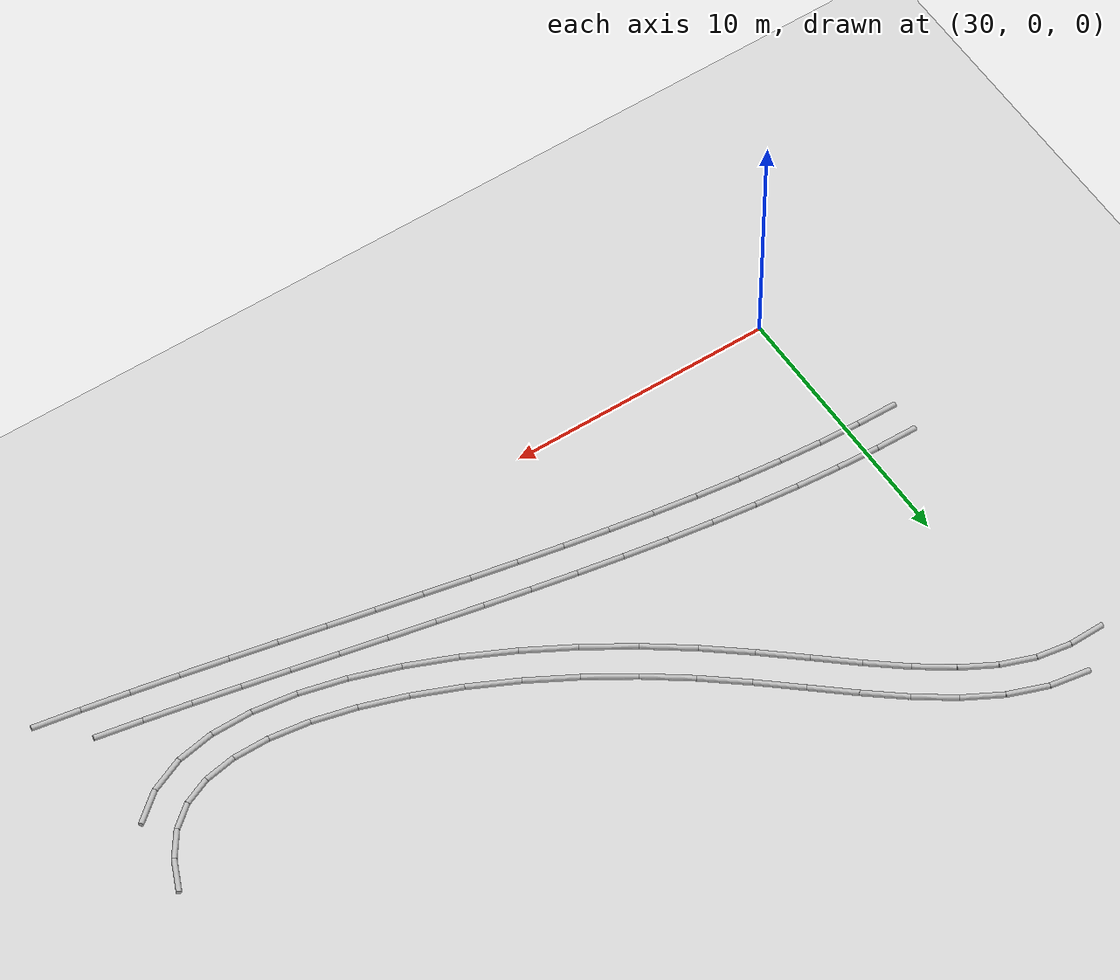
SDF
<sdf version="1.6">
 <world name="default">
  <model name="ground_plane">
   <static>true</static>
   <link name="link">
    <collision name="collision">
     <geometry><plane><normal>0 0 1</normal><size>5000 5000</size></plane></geometry>
     <surface>
      <friction>
       <ode><mu>50</mu></ode>
       <bullet><friction>1</friction><rolling_friction>0.1</rolling_friction></bullet>
      </friction>
     </surface>
    </collision>
    <visual name="visual">
     <geometry><plane><normal>0 0 1</normal><size>5000 5000</size></plane></geometry>
     <material>
      <ambient>0.8 0.8 0.8 1</ambient>
      <diffuse>0.8 0.8 0.8 1</diffuse>
      <specular>0.8 0.8 0.8 1</specular>
     </material>
    </visual>
    <inertial>
     <mass>1</mass>
     <inertia><ixx>1</ixx><ixy>0</ixy><ixz>0</ixz><iyy>1</iyy><iyz>0</iyz><izz>1</izz></inertia>
    </inertial>
   </link>
  </model>
  <model name="line_model">
   <static>true</static>
   <link name="cylinder_(27.9934754372947, 5.2637653848314105)_(29.528332499339804, 5.232846513929506)">
    <pose>28.76090396831725 5.248305949380459 0.05 0 1.5707963267948966 -0.020141738535908203</pose>
    <visual name="visual">
     <geometry><cylinder><radius>0.1</radius><length>1.5351684524792653</length></cylinder></geometry>
    </visual>
    <collision name="collision">
     <geometry><cylinder><radius>0.1</radius><length>1.5351684524792653</length></cylinder></geometry>
    </collision>
   </link>
   <link name="cylinder_(29.528332499339804, 5.232846513929506)_(31.082205224692803, 5.152097378915327)">
    <pose>30.305268862016305 5.192471946422417 0.05 0 1.5707963267948966 -0.051919673633760946</pose>
    <visual name="visual">
     <geometry><cylinder><radius>0.1</radius><length>1.555969430741329</length></cylinder></geometry>
    </visual>
    <collision name="collision">
     <geometry><cylinder><radius>0.1</radius><length>1.555969430741329</length></cylinder></geometry>
    </collision>
   </link>
   <link name="cylinder_(31.082205224692803, 5.152097378915327)_(32.654111068658146, 5.025552953069772)">
    <pose>31.868158146675476 5.088825165992549 0.05 0 1.5707963267948966 -0.08033058213804231</pose>
    <visual name="visual">
     <geometry><cylinder><radius>0.1</radius><length>1.5769912726470552</length></cylinder></geometry>
    </visual>
    <collision name="collision">
     <geometry><cylinder><radius>0.1</radius><length>1.5769912726470552</length></cylinder></geometry>
    </collision>
   </link>
   <link name="cylinder_(32.654111068658146, 5.025552953069772)_(34.24305451079734, 4.857277501087925)">
    <pose>33.448582789727745 4.941415227078848 0.05 0 1.5707963267948966 -0.10551070663037972</pose>
    <visual name="visual">
     <geometry><cylinder><radius>0.1</radius><length>1.5978291179149458</length></cylinder></geometry>
    </visual>
    <collision name="collision">
     <geometry><cylinder><radius>0.1</radius><length>1.5978291179149458</length></cylinder></geometry>
    </collision>
   </link>
   <link name="cylinder_(34.24305451079734, 4.857277501087925)_(35.84803471329416, 4.6513620729837895)">
    <pose>35.04554461204575 4.754319787035858 0.05 0 1.5707963267948966 -0.12760072980671502</pose>
    <visual name="visual">
     <geometry><cylinder><radius>0.1</radius><length>1.618135536331255</length></cylinder></geometry>
    </visual>
    <collision name="collision">
     <geometry><cylinder><radius>0.1</radius><length>1.618135536331255</length></cylinder></geometry>
    </collision>
   </link>
   <link name="cylinder_(35.84803471329416, 4.6513620729837895)_(37.468051202185926, 4.411921430507268)">
    <pose>36.658042957740044 4.5316417517455285 0.05 0 1.5707963267948966 -0.14673899931854084</pose>
    <visual name="visual">
     <geometry><cylinder><radius>0.1</radius><length>1.637615719743423</length></cylinder></geometry>
    </visual>
    <collision name="collision">
     <geometry><cylinder><radius>0.1</radius><length>1.637615719743423</length></cylinder></geometry>
    </collision>
   </link>
   <link name="cylinder_(37.468051202185926, 4.411921430507268)_(39.10210790791441, 4.143090862295393)">
    <pose>38.28507955505017 4.277506146401331 0.05 0 1.5707963267948966 -0.16305665831483268</pose>
    <visual name="visual">
     <geometry><cylinder><radius>0.1</radius><length>1.6560227027252197</length></cylinder></geometry>
    </visual>
    <collision name="collision">
     <geometry><cylinder><radius>0.1</radius><length>1.6560227027252197</length></cylinder></geometry>
    </collision>
   </link>
   <link name="cylinder_(39.10210790791441, 4.143090862295393)_(40.749215912476004, 3.849023171927874)">
    <pose>39.9256619101952 3.9960570171116334 0.05 0 1.5707963267948966 -0.17667429598291565</pose>
    <visual name="visual">
     <geometry><cylinder><radius>0.1</radius><length>1.673152887577512</length></cylinder></geometry>
    </visual>
    <collision name="collision">
     <geometry><cylinder><radius>0.1</radius><length>1.673152887577512</length></cylinder></geometry>
    </collision>
   </link>
   <link name="cylinder_(40.749215912476004, 3.849023171927874)_(42.40839521754821, 3.5338859976778467)">
    <pose>41.578805565012104 3.6914545848028606 0.05 0 1.5707963267948966 -0.18769976485526352</pose>
    <visual name="visual">
     <geometry><cylinder><radius>0.1</radius><length>1.6888420307933438</length></cylinder></geometry>
    </visual>
    <collision name="collision">
     <geometry><cylinder><radius>0.1</radius><length>1.6888420307933438</length></cylinder></geometry>
    </collision>
   </link>
   <link name="cylinder_(42.40839521754821, 3.5338859976778467)_(44.0786757963008, 3.2018595382521617)">
    <pose>43.2435355069245 3.3678727679650042 0.05 0 1.5707963267948966 -0.19622686524881242</pose>
    <visual name="visual">
     <geometry><cylinder><radius>0.1</radius><length>1.7029617674853537</length></cylinder></geometry>
    </visual>
    <collision name="collision">
     <geometry><cylinder><radius>0.1</radius><length>1.7029617674853537</length></cylinder></geometry>
    </collision>
   </link>
   <link name="cylinder_(44.0786757963008, 3.2018595382521617)_(45.759098135993014, 2.857134706126849)">
    <pose>44.91888696614691 3.0294971221895053 0.05 0 1.5707963267948966 -0.20233465634317807</pose>
    <visual name="visual">
     <geometry><cylinder><radius>0.1</radius><length>1.715416698537262</length></cylinder></geometry>
    </visual>
    <collision name="collision">
     <geometry><cylinder><radius>0.1</radius><length>1.715416698537262</length></cylinder></geometry>
    </collision>
   </link>
   <link name="cylinder_(45.759098135993014, 2.857134706126849)_(47.44871342654577, 2.503911700198528)">
    <pose>46.60390578126939 2.6805232031626884 0.05 0 1.5707963267948966 -0.20608720965147564</pose>
    <visual name="visual">
     <geometry><cylinder><radius>0.1</radius><length>1.7261420341289189</length></cylinder></geometry>
    </visual>
    <collision name="collision">
     <geometry><cylinder><radius>0.1</radius><length>1.7261420341289189</length></cylinder></geometry>
    </collision>
   </link>
   <link name="cylinder_(47.44871342654577, 2.503911700198528)_(49.146583505119345, 2.14639897485304)">
    <pose>48.29764846583256 2.325155337525784 0.05 0 1.5707963267948966 -0.2075336702733194</pose>
    <visual name="visual">
     <geometry><cylinder><radius>0.1</radius><length>1.73510177006981</length></cylinder></geometry>
    </visual>
    <collision name="collision">
     <geometry><cylinder><radius>0.1</radius><length>1.73510177006981</length></cylinder></geometry>
    </collision>
   </link>
   <link name="cylinder_(49.146583505119345, 2.14639897485304)_(50.851780628765574, 1.7888125774310855)">
    <pose>49.99918206694246 1.967605776142063 0.05 0 1.5707963267948966 -0.2067085334373408</pose>
    <visual name="visual">
     <geometry><cylinder><radius>0.1</radius><length>1.7422873649638242</length></cylinder></geometry>
    </visual>
    <collision name="collision">
     <geometry><cylinder><radius>0.1</radius><length>1.7422873649638242</length></cylinder></geometry>
    </collision>
   </link>
   <link name="cylinder_(50.851780628765574, 1.7888125774310855)_(52.56338711558502, 1.4353758262490761)">
    <pose>51.7075838721753 1.6120942018400808 0.05 0 1.5707963267948966 -0.20363207903535804</pose>
    <visual name="visual">
     <geometry><cylinder><radius>0.1</radius><length>1.7477168829099605</length></cylinder></geometry>
    </visual>
    <collision name="collision">
     <geometry><cylinder><radius>0.1</radius><length>1.7477168829099605</length></cylinder></geometry>
    </collision>
   </link>
   <link name="cylinder_(52.56338711558502, 1.4353758262490761)_(54.280494868097854, 1.090319303800935)">
    <pose>53.42194099184144 1.2628475650250055 0.05 0 1.5707963267948966 -0.1983109363935158</pose>
    <visual name="visual">
     <geometry><cylinder><radius>0.1</radius><length>1.7514345655558103</length></cylinder></geometry>
    </visual>
    <collision name="collision">
     <geometry><cylinder><radius>0.1</radius><length>1.7514345655558103</length></cylinder></geometry>
    </collision>
   </link>
   <link name="cylinder_(54.280494868097854, 1.090319303800935)_(56.0022047692579, 0.7578811423034493)">
    <pose>55.14134981867788 0.9241002230521921 0.05 0 1.5707963267948966 -0.1907387768709768</pose>
    <visual name="visual">
     <geometry><cylinder><radius>0.1</radius><length>1.7535107969363537</length></cylinder></geometry>
    </visual>
    <collision name="collision">
     <geometry><cylinder><radius>0.1</radius><length>1.7535107969363537</length></cylinder></geometry>
    </collision>
   </link>
   <link name="cylinder_(56.0022047692579, 0.7578811423034493)_(57.727625920437426, 0.442307579578182)">
    <pose>56.86491534484766 0.6000943609408156 0.05 0 1.5707963267948966 -0.1808971543747414</pose>
    <visual name="visual">
     <geometry><cylinder><radius>0.1</radius><length>1.7540424232123906</length></cylinder></geometry>
    </visual>
    <collision name="collision">
     <geometry><cylinder><radius>0.1</radius><length>1.7540424232123906</length></cylinder></geometry>
    </collision>
   </link>
   <link name="cylinder_(57.727625920437426, 0.442307579578182)_(59.4558746709025, 0.14785376078527576)">
    <pose>58.59175029566997 0.2950806701817289 0.05 0 1.5707963267948966 -0.16875653459969686</pose>
    <visual name="visual">
     <geometry><cylinder><radius>0.1</radius><length>1.7531533860121387</length></cylinder></geometry>
    </visual>
    <collision name="collision">
     <geometry><cylinder><radius>0.1</radius><length>1.7531533860121387</length></cylinder></geometry>
    </collision>
   </link>
   <link name="cylinder_(58.70257410059047, 8.26828628424899)_(58.17057464492759, 7.100785915531385)">
    <pose>58.436574372759026 7.684536099890188 0.05 0 1.5707963267948966 -1.9983586474163566</pose>
    <visual name="visual">
     <geometry><cylinder><radius>0.1</radius><length>1.2829966998325997</length></cylinder></geometry>
    </visual>
    <collision name="collision">
     <geometry><cylinder><radius>0.1</radius><length>1.2829966998325997</length></cylinder></geometry>
    </collision>
   </link>
   <link name="cylinder_(58.17057464492759, 7.100785915531385)_(57.50331608716293, 6.182983454078983)">
    <pose>57.836945366045256 6.641884684805184 0.05 0 1.5707963267948966 -2.1994257365991934</pose>
    <visual name="visual">
     <geometry><cylinder><radius>0.1</radius><length>1.134722583347253</length></cylinder></geometry>
    </visual>
    <collision name="collision">
     <geometry><cylinder><radius>0.1</radius><length>1.134722583347253</length></cylinder></geometry>
    </collision>
   </link>
   <link name="cylinder_(57.50331608716293, 6.182983454078983)_(56.69185200317473, 5.514856528403582)">
    <pose>57.09758404516883 5.848919991241283 0.05 0 1.5707963267948966 -2.4527693268920774</pose>
    <visual name="visual">
     <geometry><cylinder><radius>0.1</radius><length>1.0511267993992301</length></cylinder></geometry>
    </visual>
    <collision name="collision">
     <geometry><cylinder><radius>0.1</radius><length>1.0511267993992301</length></cylinder></geometry>
    </collision>
   </link>
   <link name="cylinder_(56.69185200317473, 5.514856528403582)_(55.69785671107928, 5.078561471795666)">
    <pose>56.19485435712701 5.296709000099624 0.05 0 1.5707963267948966 -2.7279819871769684</pose>
    <visual name="visual">
     <geometry><cylinder><radius>0.1</radius><length>1.0855321354655605</length></cylinder></geometry>
    </visual>
    <collision name="collision">
     <geometry><cylinder><radius>0.1</radius><length>1.0855321354655605</length></cylinder></geometry>
    </collision>
   </link>
   <link name="cylinder_(55.69785671107928, 5.078561471795666)_(54.50592746374859, 4.8599177005993655)">
    <pose>55.10189208741394 4.969239586197515 0.05 0 1.5707963267948966 -2.960172710528369</pose>
    <visual name="visual">
     <geometry><cylinder><radius>0.1</radius><length>1.2118169949811928</length></cylinder></geometry>
    </visual>
    <collision name="collision">
     <geometry><cylinder><radius>0.1</radius><length>1.2118169949811928</length></cylinder></geometry>
    </collision>
   </link>
   <link name="cylinder_(54.50592746374859, 4.8599177005993655)_(53.13992916734067, 4.856273944405601)">
    <pose>53.82292831554463 4.858095822502483 0.05 0 1.5707963267948966 -3.138925192319056</pose>
    <visual name="visual">
     <geometry><cylinder><radius>0.1</radius><length>1.3660031562000683</length></cylinder></geometry>
    </visual>
    <collision name="collision">
     <geometry><cylinder><radius>0.1</radius><length>1.3660031562000683</length></cylinder></geometry>
    </collision>
   </link>
   <link name="cylinder_(53.13992916734067, 4.856273944405601)_(51.63396336661217, 5.05892124522998)">
    <pose>52.38694626697642 4.95759759481779 0.05 0 1.5707963267948966 3.0078331125429276</pose>
    <visual name="visual">
     <geometry><cylinder><radius>0.1</radius><length>1.5195390490195468</length></cylinder></geometry>
    </visual>
    <collision name="collision">
     <geometry><cylinder><radius>0.1</radius><length>1.5195390490195468</length></cylinder></geometry>
    </collision>
   </link>
   <link name="cylinder_(51.63396336661217, 5.05892124522998)_(50.023648734237184, 5.453043497631224)">
    <pose>50.828806050424674 5.255982371430602 0.05 0 1.5707963267948966 2.9015625584707525</pose>
    <visual name="visual">
     <geometry><cylinder><radius>0.1</radius><length>1.6578436491656319</length></cylinder></geometry>
    </visual>
    <collision name="collision">
     <geometry><cylinder><radius>0.1</radius><length>1.6578436491656319</length></cylinder></geometry>
    </collision>
   </link>
   <link name="cylinder_(50.023648734237184, 5.453043497631224)_(48.34341062093662, 6.020392834182298)">
    <pose>49.183529677586904 5.736718165906761 0.05 0 1.5707963267948966 2.8159530944212254</pose>
    <visual name="visual">
     <geometry><cylinder><radius>0.1</radius><length>1.7734388591301287</length></cylinder></geometry>
    </visual>
    <collision name="collision">
     <geometry><cylinder><radius>0.1</radius><length>1.7734388591301287</length></cylinder></geometry>
    </collision>
   </link>
   <link name="cylinder_(48.34341062093662, 6.020392834182298)_(46.626273446217084, 6.741074128621283)">
    <pose>47.484842033576854 6.380733481401791 0.05 0 1.5707963267948966 2.744220287857938</pose>
    <visual name="visual">
     <geometry><cylinder><radius>0.1</radius><length>1.8622410168820933</length></cylinder></geometry>
    </visual>
    <collision name="collision">
     <geometry><cylinder><radius>0.1</radius><length>1.8622410168820933</length></cylinder></geometry>
    </collision>
   </link>
   <link name="cylinder_(46.626273446217084, 6.741074128621283)_(44.90422032114967, 7.594413650578128)">
    <pose>45.765246883683375 7.167743889599706 0.05 0 1.5707963267948966 2.681522522091067</pose>
    <visual name="visual">
     <geometry><cylinder><radius>0.1</radius><length>1.9218884736862267</length></cylinder></geometry>
    </visual>
    <collision name="collision">
     <geometry><cylinder><radius>0.1</radius><length>1.9218884736862267</length></cylinder></geometry>
    </collision>
   </link>
   <link name="cylinder_(44.90422032114967, 7.594413650578128)_(43.208557548481124, 8.559329355519212)">
    <pose>44.0563889348154 8.07687150304867 0.05 0 1.5707963267948966 2.6242419861679354</pose>
    <visual name="visual">
     <geometry><cylinder><radius>0.1</radius><length>1.9509829718006098</length></cylinder></geometry>
    </visual>
    <collision name="collision">
     <geometry><cylinder><radius>0.1</radius><length>1.9509829718006098</length></cylinder></geometry>
    </collision>
   </link>
   <link name="cylinder_(43.208557548481124, 8.559329355519212)_(41.57018761349734, 9.614455479859743)">
    <pose>42.38937258098923 9.086892417689477 0.05 0 1.5707963267948966 2.5694400760486515</pose>
    <visual name="visual">
     <geometry><cylinder><radius>0.1</radius><length>1.9487296328954002</length></cylinder></geometry>
    </visual>
    <collision name="collision">
     <geometry><cylinder><radius>0.1</radius><length>1.9487296328954002</length></cylinder></geometry>
    </collision>
   </link>
   <link name="cylinder_(41.57018761349734, 9.614455479859743)_(40.019381489834764, 10.738331463423512)">
    <pose>40.794784551666055 10.176393471641628 0.05 0 1.5707963267948966 2.514478261172005</pose>
    <visual name="visual">
     <geometry><cylinder><radius>0.1</radius><length>1.9152276260593077</length></cylinder></geometry>
    </visual>
    <collision name="collision">
     <geometry><cylinder><radius>0.1</radius><length>1.9152276260593077</length></cylinder></geometry>
    </collision>
   </link>
   <link name="cylinder_(40.019381489834764, 10.738331463423512)_(38.56221468891156, 11.908993749539263)">
    <pose>39.29079808937316 11.323662606481388 0.05 0 1.5707963267948966 2.4647926206903668</pose>
    <visual name="visual">
     <geometry><cylinder><radius>0.1</radius><length>1.8691669999886373</length></cylinder></geometry>
    </visual>
    <collision name="collision">
     <geometry><cylinder><radius>0.1</radius><length>1.8691669999886373</length></cylinder></geometry>
    </collision>
   </link>
   <link name="cylinder_(38.56221468891156, 11.908993749539263)_(37.176200601954754, 13.087338510544694)">
    <pose>37.86920764543316 12.498166130041978 0.05 0 1.5707963267948966 2.437001091275924</pose>
    <visual name="visual">
     <geometry><cylinder><radius>0.1</radius><length>1.8192117592604915</length></cylinder></geometry>
    </visual>
    <collision name="collision">
     <geometry><cylinder><radius>0.1</radius><length>1.8192117592604915</length></cylinder></geometry>
    </collision>
   </link>
   <link name="cylinder_(37.176200601954754, 13.087338510544694)_(35.8375525327696, 14.229338309377795)">
    <pose>36.50687656736218 13.658338409961244 0.05 0 1.5707963267948966 2.435302006180048</pose>
    <visual name="visual">
     <geometry><cylinder><radius>0.1</radius><length>1.7595858017351658</length></cylinder></geometry>
    </visual>
    <collision name="collision">
     <geometry><cylinder><radius>0.1</radius><length>1.7595858017351658</length></cylinder></geometry>
    </collision>
   </link>
   <link name="cylinder_(35.8375525327696, 14.229338309377795)_(34.52081895490387, 15.290516835370616)">
    <pose>35.17918574383674 14.759927572374206 0.05 0 1.5707963267948966 2.4632539300511183</pose>
    <visual name="visual">
     <geometry><cylinder><radius>0.1</radius><length>1.6911200960036434</length></cylinder></geometry>
    </visual>
    <collision name="collision">
     <geometry><cylinder><radius>0.1</radius><length>1.6911200960036434</length></cylinder></geometry>
    </collision>
   </link>
   <link name="cylinder_(34.52081895490387, 15.290516835370616)_(33.19829575799273, 16.225268993501267)">
    <pose>33.859557356448306 15.757892914435942 0.05 0 1.5707963267948966 2.5263211446560225</pose>
    <visual name="visual">
     <geometry><cylinder><radius>0.1</radius><length>1.6195151136985346</length></cylinder></geometry>
    </visual>
    <collision name="collision">
     <geometry><cylinder><radius>0.1</radius><length>1.6195151136985346</length></cylinder></geometry>
    </collision>
   </link>
   <link name="cylinder_(33.19829575799273, 16.225268993501267)_(31.840201454721644, 16.984878418232007)">
    <pose>32.51924860635719 16.605073705866637 0.05 0 1.5707963267948966 2.6316220763667695</pose>
    <visual name="visual">
     <geometry><cylinder><radius>0.1</radius><length>1.556093382389742</length></cylinder></geometry>
    </visual>
    <collision name="collision">
     <geometry><cylinder><radius>0.1</radius><length>1.556093382389742</length></cylinder></geometry>
    </collision>
   </link>
   <link name="cylinder_(31.840201454721644, 16.984878418232007)_(30.417866588545404, 17.514300594670665)">
    <pose>31.129034021633522 17.249589506451336 0.05 0 1.5707963267948966 2.785261040721242</pose>
    <visual name="visual">
     <geometry><cylinder><radius>0.1</radius><length>1.517670686428919</length></cylinder></geometry>
    </visual>
    <collision name="collision">
     <geometry><cylinder><radius>0.1</radius><length>1.517670686428919</length></cylinder></geometry>
    </collision>
   </link>
   <link name="cylinder_(30.417866588545404, 17.514300594670665)_(28.926657469427106, 17.758682647520832)">
    <pose>29.672262028986253 17.63649162109575 0.05 0 1.5707963267948966 2.9791547818362183</pose>
    <visual name="visual">
     <geometry><cylinder><radius>0.1</radius><length>1.5111013284015187</length></cylinder></geometry>
    </visual>
    <collision name="collision">
     <geometry><cylinder><radius>0.1</radius><length>1.5111013284015187</length></cylinder></geometry>
    </collision>
   </link>
   <link name="cylinder_(27.99714726541719, 6.463759767184193)_(29.57220316422609, 6.432044314445515)">
    <pose>28.78467521482164 6.447902040814855 0.05 0 1.5707963267948966 -0.020133359925528886</pose>
    <visual name="visual">
     <geometry><cylinder><radius>0.1</radius><length>1.5753751789066393</length></cylinder></geometry>
    </visual>
    <collision name="collision">
     <geometry><cylinder><radius>0.1</radius><length>1.5753751789066393</length></cylinder></geometry>
    </collision>
   </link>
   <link name="cylinder_(29.57220316422609, 6.432044314445515)_(31.162118148247213, 6.349433557542276)">
    <pose>30.36716065623665 6.3907389359938955 0.05 0 1.5707963267948966 -0.0519125455215297</pose>
    <visual name="visual">
     <geometry><cylinder><radius>0.1</radius><length>1.5920597330411377</length></cylinder></geometry>
    </visual>
    <collision name="collision">
     <geometry><cylinder><radius>0.1</radius><length>1.5920597330411377</length></cylinder></geometry>
    </collision>
   </link>
   <link name="cylinder_(31.162118148247213, 6.349433557542276)_(32.76605189472212, 6.220320399671879)">
    <pose>31.964085021484664 6.284876978607077 0.05 0 1.5707963267948966 -0.08032461278766254</pose>
    <visual name="visual">
     <geometry><cylinder><radius>0.1</radius><length>1.6091220185605224</length></cylinder></geometry>
    </visual>
    <collision name="collision">
     <geometry><cylinder><radius>0.1</radius><length>1.6091220185605224</length></cylinder></geometry>
    </collision>
   </link>
   <link name="cylinder_(32.76605189472212, 6.220320399671879)_(34.38317705663536, 6.049068452617544)">
    <pose>33.57461447567874 6.134694426144711 0.05 0 1.5707963267948966 -0.10550577682255322</pose>
    <visual name="visual">
     <geometry><cylinder><radius>0.1</radius><length>1.6261675862784974</length></cylinder></geometry>
    </visual>
    <collision name="collision">
     <geometry><cylinder><radius>0.1</radius><length>1.6261675862784974</length></cylinder></geometry>
    </collision>
   </link>
   <link name="cylinder_(34.38317705663536, 6.049068452617544)_(36.01267160434911, 5.840014542843572)">
    <pose>35.197924330492235 5.944541497730558 0.05 0 1.5707963267948966 -0.1275967119278345</pose>
    <visual name="visual">
     <geometry><cylinder><radius>0.1</radius><length>1.6428499682626574</length></cylinder></geometry>
    </visual>
    <collision name="collision">
     <geometry><cylinder><radius>0.1</radius><length>1.6428499682626574</length></cylinder></geometry>
    </collision>
   </link>
   <link name="cylinder_(36.01267160434911, 5.840014542843572)_(37.653713144372105, 5.597471785078366)">
    <pose>36.83319237436061 5.718743163960969 0.05 0 1.5707963267948966 -0.14673576959441892</pose>
    <visual name="visual">
     <geometry><cylinder><radius>0.1</radius><length>1.658868387011278</length></cylinder></geometry>
    </visual>
    <collision name="collision">
     <geometry><cylinder><radius>0.1</radius><length>1.658868387011278</length></cylinder></geometry>
    </collision>
   </link>
   <link name="cylinder_(37.653713144372105, 5.597471785078366)_(39.305474878808546, 5.3257327671631955)">
    <pose>38.47959401159032 5.4616022761207805 0.05 0 1.5707963267948966 -0.16305410388848499</pose>
    <visual name="visual">
     <geometry><cylinder><radius>0.1</radius><length>1.6739650298635218</length></cylinder></geometry>
    </visual>
    <collision name="collision">
     <geometry><cylinder><radius>0.1</radius><length>1.6739650298635218</length></cylinder></geometry>
    </collision>
   </link>
   <link name="cylinder_(39.305474878808546, 5.3257327671631955)_(40.96712285820811, 5.0290725619966565)">
    <pose>40.13629886850833 5.177402664579926 0.05 0 1.5707963267948966 -0.17667231841887104</pose>
    <visual name="visual">
     <geometry><cylinder><radius>0.1</radius><length>1.6879221797144845</length></cylinder></geometry>
    </visual>
    <collision name="collision">
     <geometry><cylinder><radius>0.1</radius><length>1.6879221797144845</length></cylinder></geometry>
    </collision>
   </link>
   <link name="cylinder_(40.96712285820811, 5.0290725619966565)_(42.637814213439256, 4.711751407783916)">
    <pose>41.80246853582368 4.8704119848902865 0.05 0 1.5707963267948966 -0.1876982813471245</pose>
    <visual name="visual">
     <geometry><cylinder><radius>0.1</radius><length>1.700559413650402</length></cylinder></geometry>
    </visual>
    <collision name="collision">
     <geometry><cylinder><radius>0.1</radius><length>1.700559413650402</length></cylinder></geometry>
    </collision>
   </link>
   <link name="cylinder_(42.637814213439256, 4.711751407783916)_(44.31669610387824, 4.378016982296429)">
    <pose>43.47725515865875 4.544884195040172 0.05 0 1.5707963267948966 -0.19622580846998897</pose>
    <visual name="visual">
     <geometry><cylinder><radius>0.1</radius><length>1.7117310153173746</length></cylinder></geometry>
    </visual>
    <collision name="collision">
     <geometry><cylinder><radius>0.1</radius><length>1.7117310153173746</length></cylinder></geometry>
    </collision>
   </link>
   <link name="cylinder_(44.31669610387824, 4.378016982296429)_(46.002905174811865, 4.0321062495364695)">
    <pose>45.15980063934505 4.205061615916449 0.05 0 1.5707963267948966 -0.20233397358605656</pose>
    <visual name="visual">
     <geometry><cylinder><radius>0.1</radius><length>1.7213236958623903</length></cylinder></geometry>
    </visual>
    <collision name="collision">
     <geometry><cylinder><radius>0.1</radius><length>1.7213236958623903</length></cylinder></geometry>
    </collision>
   </link>
   <link name="cylinder_(46.002905174811865, 4.0321062495364695)_(47.69556736886517, 3.678246887085718)">
    <pose>46.84923627183852 3.8551765683110935 0.05 0 1.5707963267948966 -0.20608686167028487</pose>
    <visual name="visual">
     <geometry><cylinder><radius>0.1</radius><length>1.7292546809453493</length></cylinder></geometry>
    </visual>
    <collision name="collision">
     <geometry><cylinder><radius>0.1</radius><length>1.7292546809453493</length></cylinder></geometry>
    </collision>
   </link>
   <link name="cylinder_(47.69556736886517, 3.678246887085718)_(49.39379798142391, 3.3206583170366395)">
    <pose>48.54468267514454 3.4994526020611785 0.05 0 1.5707963267948966 -0.20753363007868864</pose>
    <visual name="visual">
     <geometry><cylinder><radius>0.1</radius><length>1.735470195324994</length></cylinder></geometry>
    </visual>
    <collision name="collision">
     <geometry><cylinder><radius>0.1</radius><length>1.735470195324994</length></cylinder></geometry>
    </collision>
   </link>
   <link name="cylinder_(49.39379798142391, 3.3206583170366395)_(51.09670188798232, 2.9635523685268335)">
    <pose>50.24524993470311 3.1421053427817363 0.05 0 1.5707963267948966 -0.2067087851734931</pose>
    <visual name="visual">
     <geometry><cylinder><radius>0.1</radius><length>1.7399443592922699</length></cylinder></geometry>
    </visual>
    <collision name="collision">
     <geometry><cylinder><radius>0.1</radius><length>1.7399443592922699</length></cylinder></geometry>
    </collision>
   </link>
   <link name="cylinder_(51.09670188798232, 2.9635523685268335)_(52.80337390298574, 2.6111335997182037)">
    <pose>51.95003789548403 2.7873429841225184 0.05 0 1.5707963267948966 -0.20363261699020124</pose>
    <visual name="visual">
     <geometry><cylinder><radius>0.1</radius><length>1.742678500299015</length></cylinder></geometry>
    </visual>
    <collision name="collision">
     <geometry><cylinder><radius>0.1</radius><length>1.742678500299015</length></cylinder></geometry>
    </collision>
   </link>
   <link name="cylinder_(52.80337390298574, 2.6111335997182037)_(54.51289925646014, 2.2675993045951186)">
    <pose>53.658136579722935 2.439366452156661 0.05 0 1.5707963267948966 -0.1983117641346083</pose>
    <visual name="visual">
     <geometry><cylinder><radius>0.1</radius><length>1.7437008763252597</length></cylinder></geometry>
    </visual>
    <collision name="collision">
     <geometry><cylinder><radius>0.1</radius><length>1.7437008763252597</length></cylinder></geometry>
    </collision>
   </link>
   <link name="cylinder_(54.51289925646014, 2.2675993045951186)_(56.224354197997556, 1.9371392274191066)">
    <pose>55.36862672722884 2.1023692660071127 0.05 0 1.5707963267948966 -0.19073990645607836</pose>
    <visual name="visual">
     <geometry><cylinder><radius>0.1</radius><length>1.743066802942453</length></cylinder></geometry>
    </visual>
    <collision name="collision">
     <geometry><cylinder><radius>0.1</radius><length>1.743066802942453</length></cylinder></geometry>
    </collision>
   </link>
   <link name="cylinder_(56.224354197997556, 1.9371392274191066)_(57.93680675877189, 1.6239350068469)">
    <pose>57.08058047838472 1.7805371171330033 0.05 0 1.5707963267948966 -0.18089860554656162</pose>
    <visual name="visual">
     <geometry><cylinder><radius>0.1</radius><length>1.74085917198572</length></cylinder></geometry>
    </visual>
    <collision name="collision">
     <geometry><cylinder><radius>0.1</radius><length>1.74085917198572</length></cylinder></geometry>
    </collision>
   </link>
   <link name="cylinder_(58.38195996262169, 5.365679997510485)_(57.31862546477745, 4.491550597691488)">
    <pose>57.850292713699574 4.928615297600986 0.05 0 1.5707963267948966 -2.4535418792512367</pose>
    <visual name="visual">
     <geometry><cylinder><radius>0.1</radius><length>1.3765109741420858</length></cylinder></geometry>
    </visual>
    <collision name="collision">
     <geometry><cylinder><radius>0.1</radius><length>1.3765109741420858</length></cylinder></geometry>
    </collision>
   </link>
   <link name="cylinder_(57.31862546477745, 4.491550597691488)_(56.04130613629057, 3.9287604053837244)">
    <pose>56.679965800534006 4.210155501537606 0.05 0 1.5707963267948966 -2.726581048216616</pose>
    <visual name="visual">
     <geometry><cylinder><radius>0.1</radius><length>1.3958071025338605</length></cylinder></geometry>
    </visual>
    <collision name="collision">
     <geometry><cylinder><radius>0.1</radius><length>1.3958071025338605</length></cylinder></geometry>
    </collision>
   </link>
   <link name="cylinder_(56.04130613629057, 3.9287604053837244)_(54.608638896325125, 3.664321463729209)">
    <pose>55.32497251630785 3.7965409345564667 0.05 0 1.5707963267948966 -2.959068893848191</pose>
    <visual name="visual">
     <geometry><cylinder><radius>0.1</radius><length>1.4568676584829425</length></cylinder></geometry>
    </visual>
    <collision name="collision">
     <geometry><cylinder><radius>0.1</radius><length>1.4568676584829425</length></cylinder></geometry>
    </collision>
   </link>
   <link name="cylinder_(54.608638896325125, 3.664321463729209)_(53.055622788307915, 3.6592390934282433)">
    <pose>53.832130842316516 3.661780278578726 0.05 0 1.5707963267948966 -3.138320084727725</pose>
    <visual name="visual">
     <geometry><cylinder><radius>0.1</radius><length>1.5530244242280289</length></cylinder></geometry>
    </visual>
    <collision name="collision">
     <geometry><cylinder><radius>0.1</radius><length>1.5530244242280289</length></cylinder></geometry>
    </collision>
   </link>
   <link name="cylinder_(53.055622788307915, 3.6592390934282433)_(51.40702021904599, 3.8805763009234537)">
    <pose>52.23132150367695 3.7699076971758485 0.05 0 1.5707963267948966 3.008133238398249</pose>
    <visual name="visual">
     <geometry><cylinder><radius>0.1</radius><length>1.663394298054072</length></cylinder></geometry>
    </visual>
    <collision name="collision">
     <geometry><cylinder><radius>0.1</radius><length>1.663394298054072</length></cylinder></geometry>
    </collision>
   </link>
   <link name="cylinder_(51.40702021904599, 3.8805763009234537)_(49.68607646742905, 4.301503240114358)">
    <pose>50.54654834323752 4.091039770518906 0.05 0 1.5707963267948966 2.901711484188329</pose>
    <visual name="visual">
     <geometry><cylinder><radius>0.1</radius><length>1.771673470018113</length></cylinder></geometry>
    </visual>
    <collision name="collision">
     <geometry><cylinder><radius>0.1</radius><length>1.771673470018113</length></cylinder></geometry>
    </collision>
   </link>
   <link name="cylinder_(49.68607646742905, 4.301503240114358)_(47.917230134299864, 4.8986218268862185)">
    <pose>48.80165330086446 4.600062533500289 0.05 0 1.5707963267948966 2.8160293241833023</pose>
    <visual name="visual">
     <geometry><cylinder><radius>0.1</radius><length>1.8669140196840828</length></cylinder></geometry>
    </visual>
    <collision name="collision">
     <geometry><cylinder><radius>0.1</radius><length>1.8669140196840828</length></cylinder></geometry>
    </collision>
   </link>
   <link name="cylinder_(47.917230134299864, 4.8986218268862185)_(46.12632075171557, 5.650181235959187)">
    <pose>47.02177544300771 5.274401531422702 0.05 0 1.5707963267948966 2.7442601819263026</pose>
    <visual name="visual">
     <geometry><cylinder><radius>0.1</radius><length>1.942214705431553</length></cylinder></geometry>
    </visual>
    <collision name="collision">
     <geometry><cylinder><radius>0.1</radius><length>1.942214705431553</length></cylinder></geometry>
    </collision>
   </link>
   <link name="cylinder_(46.12632075171557, 5.650181235959187)_(44.3402291601688, 6.53520924616156)">
    <pose>45.233274955942186 6.092695241060373 0.05 0 1.5707963267948966 2.681542698203131</pose>
    <visual name="visual">
     <geometry><cylinder><radius>0.1</radius><length>1.993338343642851</length></cylinder></geometry>
    </visual>
    <collision name="collision">
     <geometry><cylinder><radius>0.1</radius><length>1.993338343642851</length></cylinder></geometry>
    </collision>
   </link>
   <link name="cylinder_(44.3402291601688, 6.53520924616156)_(42.58651300847656, 7.533141950485172)">
    <pose>43.46337108432268 7.034175598323365 0.05 0 1.5707963267948966 2.624249840705941</pose>
    <visual name="visual">
     <geometry><cylinder><radius>0.1</radius><length>2.0177685752000643</length></cylinder></geometry>
    </visual>
    <collision name="collision">
     <geometry><cylinder><radius>0.1</radius><length>2.0177685752000643</length></cylinder></geometry>
    </collision>
   </link>
   <link name="cylinder_(42.58651300847656, 7.533141950485172)_(40.89313376291666, 8.623699160973064)">
    <pose>41.73982338569661 8.078420555729117 0.05 0 1.5707963267948966 2.5694381740032157</pose>
    <visual name="visual">
     <geometry><cylinder><radius>0.1</radius><length>2.0141619345623964</length></cylinder></geometry>
    </visual>
    <collision name="collision">
     <geometry><cylinder><radius>0.1</radius><length>2.0141619345623964</length></cylinder></geometry>
    </collision>
   </link>
   <link name="cylinder_(40.89313376291666, 8.623699160973064)_(39.288485193462265, 9.786601142403445)">
    <pose>40.09080947818946 9.205150151688255 0.05 0 1.5707963267948966 2.5144757516578053</pose>
    <visual name="visual">
     <geometry><cylinder><radius>0.1</radius><length>1.9817260279530944</length></cylinder></geometry>
    </visual>
    <collision name="collision">
     <geometry><cylinder><radius>0.1</radius><length>1.9817260279530944</length></cylinder></geometry>
    </collision>
   </link>
   <link name="cylinder_(39.288485193462265, 9.786601142403445)_(37.7938524452091, 10.987245702374247)">
    <pose>38.54116881933568 10.386923422388847 0.05 0 1.5707963267948966 2.4648402831707372</pose>
    <visual name="visual">
     <geometry><cylinder><radius>0.1</radius><length>1.9171526834183805</length></cylinder></geometry>
    </visual>
    <collision name="collision">
     <geometry><cylinder><radius>0.1</radius><length>1.9171526834183805</length></cylinder></geometry>
    </collision>
   </link>
   <link name="cylinder_(37.7938524452091, 10.987245702374247)_(36.39396720210256, 12.177332517072298)">
    <pose>37.09390982365583 11.582289109723273 0.05 0 1.5707963267948966 2.4370221385124538</pose>
    <visual name="visual">
     <geometry><cylinder><radius>0.1</radius><length>1.8373854577593687</length></cylinder></geometry>
    </visual>
    <collision name="collision">
     <geometry><cylinder><radius>0.1</radius><length>1.8373854577593687</length></cylinder></geometry>
    </collision>
   </link>
   <link name="cylinder_(36.39396720210256, 12.177332517072298)_(35.06673972551814, 13.309638566974263)">
    <pose>35.730353463810346 12.74348554202328 0.05 0 1.5707963267948966 2.4352805726956506</pose>
    <visual name="visual">
     <geometry><cylinder><radius>0.1</radius><length>1.744605905425416</length></cylinder></geometry>
    </visual>
    <collision name="collision">
     <geometry><cylinder><radius>0.1</radius><length>1.744605905425416</length></cylinder></geometry>
    </collision>
   </link>
   <link name="cylinder_(35.06673972551814, 13.309638566974263)_(33.79174510708878, 14.337389706162721)">
    <pose>34.42924241630346 13.823514136568491 0.05 0 1.5707963267948966 2.4631537208915497</pose>
    <visual name="visual">
     <geometry><cylinder><radius>0.1</radius><length>1.6376457740082269</length></cylinder></geometry>
    </visual>
    <collision name="collision">
     <geometry><cylinder><radius>0.1</radius><length>1.6376457740082269</length></cylinder></geometry>
    </collision>
   </link>
   <link name="cylinder_(33.79174510708878, 14.337389706162721)_(32.55081102236004, 15.214940573074193)">
    <pose>33.171278064724405 14.776165139618456 0.05 0 1.5707963267948966 2.5260710634118166</pose>
    <visual name="visual">
     <geometry><cylinder><radius>0.1</radius><length>1.5198726679095973</length></cylinder></geometry>
    </visual>
    <collision name="collision">
     <geometry><cylinder><radius>0.1</radius><length>1.5198726679095973</length></cylinder></geometry>
    </collision>
   </link>
   <link name="cylinder_(32.55081102236004, 15.214940573074193)_(31.32784252382716, 15.899757076661086)">
    <pose>31.939326773093597 15.557348824867638 0.05 0 1.5707963267948966 2.6311328760673036</pose>
    <visual name="visual">
     <geometry><cylinder><radius>0.1</radius><length>1.4016510236106319</length></cylinder></geometry>
    </visual>
    <collision name="collision">
     <geometry><cylinder><radius>0.1</radius><length>1.4016510236106319</length></cylinder></geometry>
    </collision>
   </link>
   <link name="cylinder_(31.32784252382716, 15.899757076661086)_(30.10563263321608, 16.35563327523018)">
    <pose>30.71673757852162 16.127695175945632 0.05 0 1.5707963267948966 2.784582371054135</pose>
    <visual name="visual">
     <geometry><cylinder><radius>0.1</radius><length>1.3044616227123598</length></cylinder></geometry>
    </visual>
    <collision name="collision">
     <geometry><cylinder><radius>0.1</radius><length>1.3044616227123598</length></cylinder></geometry>
    </collision>
   </link>
   <link name="cylinder_(30.10563263321608, 16.35563327523018)_(28.847487420716867, 16.561297119218764)">
    <pose>29.476560026966474 16.45846519722447 0.05 0 1.5707963267948966 2.979559839344698</pose>
    <visual name="visual">
     <geometry><cylinder><radius>0.1</radius><length>1.274843909056653</length></cylinder></geometry>
    </visual>
    <collision name="collision">
     <geometry><cylinder><radius>0.1</radius><length>1.274843909056653</length></cylinder></geometry>
    </collision>
   </link>
   <link name="cylinder_(28.847487420716867, 16.561297119218764)_(27.512214017527736, 16.536760843451297)">
    <pose>28.1798507191223 16.54902898133503 0.05 0 1.5707963267948966 -3.1232192518235857</pose>
    <visual name="visual">
     <geometry><cylinder><radius>0.1</radius><length>1.3354988169567281</length></cylinder></geometry>
    </visual>
    <collision name="collision">
     <geometry><cylinder><radius>0.1</radius><length>1.3354988169567281</length></cylinder></geometry>
    </collision>
   </link>
  </model>
 </world>
</sdf>
